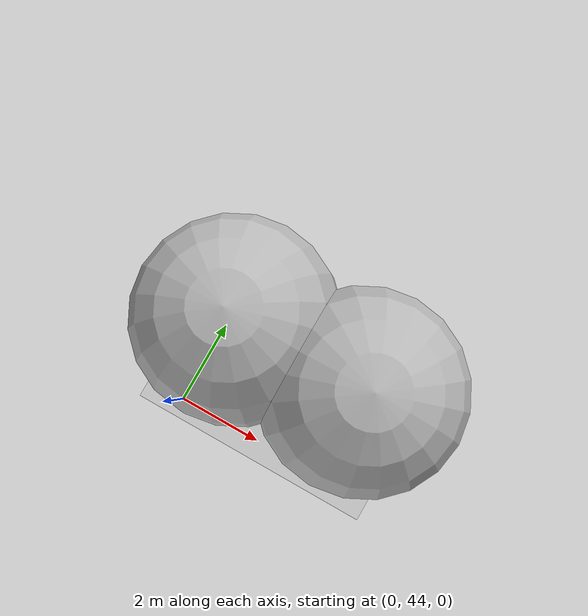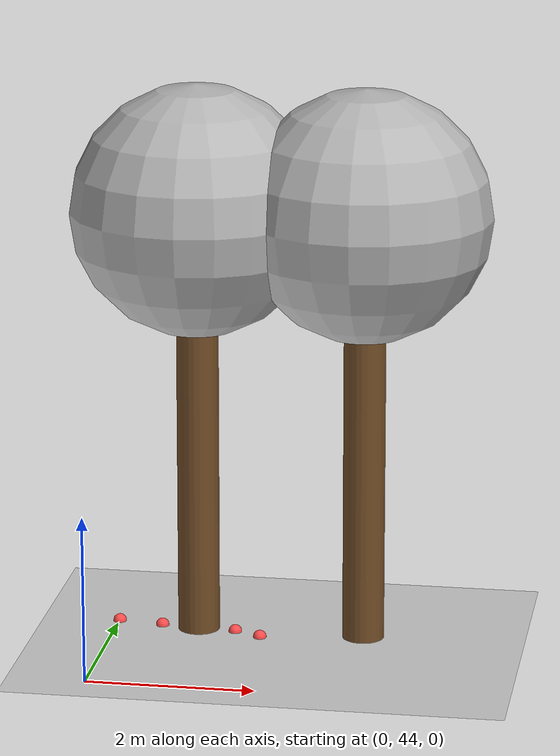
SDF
<sdf version="1.7">
 <world name="default">
  <model name="ground_plane">
   <static>1</static>
   <link name="link">
    <collision name="collision">
     <geometry><plane><normal>0 0 1</normal><size>100 100</size></plane></geometry>
     <surface>
      <contact><collide_bitmask>65535</collide_bitmask></contact>
      <friction><ode><mu>100</mu><mu2>50</mu2></ode></friction>
     </surface>
    </collision>
    <visual name="visual">
     <cast_shadows>0</cast_shadows>
     <geometry><plane><normal>0 0 1</normal><size>100 100</size></plane></geometry>
     <material>
      <script><uri>file://media/materials/scripts/gazebo.material</uri><name>Gazebo/Grey</name></script>
     </material>
    </visual>
   </link>
  </model>
  <model name="tree_simple_4">
   <static>1</static>
   <link name="link">
    <pose>0 0 0.1 0 -0 0</pose>
    <inertial>
     <mass>666</mass>
     <inertia>
      <ixx>0.0861167</ixx>
      <ixy>0</ixy>
      <ixz>0</ixz>
      <iyy>0.0861167</iyy>
      <iyz>0</iyz>
      <izz>0.0861167</izz>
     </inertia>
    </inertial>
    <collision name="collision_trunk">
     <pose>0 0 2 0 -0 0</pose>
     <geometry><cylinder><radius>0.25</radius><length>4</length></cylinder></geometry>
     <surface>
      <contact>
       <poissons_ratio>0.347</poissons_ratio>
       <elastic_modulus>8.8e+09</elastic_modulus>
       <ode><kp>100000</kp><kd>100</kd><max_vel>100</max_vel><min_depth>0.001</min_depth></ode>
      </contact>
      <friction>
       <torsional>
        <coefficient>1</coefficient>
        <use_patch_radius>0</use_patch_radius>
        <surface_radius>0.01</surface_radius>
       </torsional>
      </friction>
     </surface>
    </collision>
    <collision name="collision_treetop">
     <pose>0 0 5.2 0 -0 0</pose>
     <geometry><sphere><radius>1.5</radius></sphere></geometry>
     <surface>
      <contact>
       <poissons_ratio>0.347</poissons_ratio>
       <elastic_modulus>8.8e+09</elastic_modulus>
       <ode><kp>100000</kp><kd>100</kd><max_vel>100</max_vel><min_depth>0.001</min_depth></ode>
      </contact>
      <friction>
       <torsional>
        <coefficient>1</coefficient>
        <use_patch_radius>0</use_patch_radius>
        <surface_radius>0.01</surface_radius>
       </torsional>
      </friction>
     </surface>
    </collision>
    <visual name="trunk">
     <pose>0 0 2 0 -0 0</pose>
     <geometry><cylinder><radius>0.25</radius><length>4</length></cylinder></geometry>
     <material>
      <script>
       <uri>model://tree_simple/scripts</uri>
       <uri>model://tree_simple/materials/textures</uri>
       <name>TreeSimple/Trunk</name>
      </script>
     </material>
    </visual>
    <visual name="treetop">
     <pose>0 0 5.2 0 -0 0</pose>
     <geometry><sphere><radius>1.5</radius></sphere></geometry>
     <material>
      <script>
       <uri>model://tree_simple/scripts</uri>
       <uri>model://tree_simple/materials/textures</uri>
       <name>TreeSimple/Treetop</name>
      </script>
     </material>
    </visual>
   </link>
   <pose>1 46 -0.1 0 -0 0</pose>
  </model>
  <model name="tree_simple_5">
   <static>1</static>
   <link name="link">
    <pose>0 0 0.1 0 -0 0</pose>
    <inertial>
     <mass>666</mass>
     <inertia>
      <ixx>0.0861167</ixx>
      <ixy>0</ixy>
      <ixz>0</ixz>
      <iyy>0.0861167</iyy>
      <iyz>0</iyz>
      <izz>0.0861167</izz>
     </inertia>
    </inertial>
    <collision name="collision_trunk">
     <pose>0 0 2 0 -0 0</pose>
     <geometry><cylinder><radius>0.25</radius><length>4</length></cylinder></geometry>
     <surface>
      <contact>
       <poissons_ratio>0.347</poissons_ratio>
       <elastic_modulus>8.8e+09</elastic_modulus>
       <ode><kp>100000</kp><kd>100</kd><max_vel>100</max_vel><min_depth>0.001</min_depth></ode>
      </contact>
      <friction>
       <torsional>
        <coefficient>1</coefficient>
        <use_patch_radius>0</use_patch_radius>
        <surface_radius>0.01</surface_radius>
       </torsional>
      </friction>
     </surface>
    </collision>
    <collision name="collision_treetop">
     <pose>0 0 5.2 0 -0 0</pose>
     <geometry><sphere><radius>1.5</radius></sphere></geometry>
     <surface>
      <contact>
       <poissons_ratio>0.347</poissons_ratio>
       <elastic_modulus>8.8e+09</elastic_modulus>
       <ode><kp>100000</kp><kd>100</kd><max_vel>100</max_vel><min_depth>0.001</min_depth></ode>
      </contact>
      <friction>
       <torsional>
        <coefficient>1</coefficient>
        <use_patch_radius>0</use_patch_radius>
        <surface_radius>0.01</surface_radius>
       </torsional>
      </friction>
     </surface>
    </collision>
    <visual name="trunk">
     <pose>0 0 2 0 -0 0</pose>
     <geometry><cylinder><radius>0.25</radius><length>4</length></cylinder></geometry>
     <material>
      <script>
       <uri>model://tree_simple/scripts</uri>
       <uri>model://tree_simple/materials/textures</uri>
       <name>TreeSimple/Trunk</name>
      </script>
     </material>
    </visual>
    <visual name="treetop">
     <pose>0 0 5.2 0 -0 0</pose>
     <geometry><sphere><radius>1.5</radius></sphere></geometry>
     <material>
      <script>
       <uri>model://tree_simple/scripts</uri>
       <uri>model://tree_simple/materials/textures</uri>
       <name>TreeSimple/Treetop</name>
      </script>
     </material>
    </visual>
   </link>
   <pose>3 46 -0.1 0 -0 0</pose>
  </model>
  <model name="seed_red_13">
   <link name="link">
    <inertial>
     <mass>1</mass>
     <inertia><ixx>0.1</ixx><ixy>0</ixy><ixz>0</ixz><iyy>0.1</iyy><iyz>0</iyz><izz>0.1</izz></inertia>
    </inertial>
    <visual name="visual">
     <geometry><sphere><radius>0.08</radius></sphere></geometry>
     <material>
      <script><name>Gazebo/Grey</name><uri>file://media/materials/scripts/gazebo.material</uri></script>
      <shader type="pixel"><normal_map>__default__</normal_map></shader>
      <ambient>1 0.3 0.3 1</ambient>
      <diffuse>0.7 0.7 0.7 1</diffuse>
      <specular>0.01 0.01 0.01 1</specular>
      <emissive>0 0 0 1</emissive>
     </material>
    </visual>
    <collision name="collision">
     <geometry><sphere><radius>0.0005</radius></sphere></geometry>
     <surface>
      <friction>
       <ode><mu>1</mu><mu2>1</mu2><fdir1>0 0 0</fdir1><slip1>0</slip1><slip2>0</slip2></ode>
       <torsional>
        <coefficient>1</coefficient>
        <patch_radius>0</patch_radius>
        <surface_radius>0</surface_radius>
        <use_patch_radius>1</use_patch_radius>
        <ode><slip>0</slip></ode>
       </torsional>
      </friction>
      <bounce><restitution_coefficient>0</restitution_coefficient><threshold>1e+06</threshold></bounce>
      <contact>
       <collide_without_contact>0</collide_without_contact>
       <collide_without_contact_bitmask>1</collide_without_contact_bitmask>
       <collide_bitmask>1</collide_bitmask>
       <ode>
        <soft_cfm>0</soft_cfm>
        <soft_erp>0.2</soft_erp>
        <kp>1e+13</kp>
        <kd>1</kd>
        <max_vel>0.01</max_vel>
        <min_depth>0</min_depth>
       </ode>
       <bullet>
        <split_impulse>1</split_impulse>
        <split_impulse_penetration_threshold>-0.01</split_impulse_penetration_threshold>
        <soft_cfm>0</soft_cfm>
        <soft_erp>0.2</soft_erp>
        <kp>1e+13</kp>
        <kd>1</kd>
       </bullet>
      </contact>
     </surface>
    </collision>
   </link>
   <static>0</static>
   <pose>0.002178 46.1145 0.0005 0 -0 0</pose>
  </model>
  <model name="seed_red_14">
   <link name="link">
    <inertial>
     <mass>1</mass>
     <inertia><ixx>0.1</ixx><ixy>0</ixy><ixz>0</ixz><iyy>0.1</iyy><iyz>0</iyz><izz>0.1</izz></inertia>
    </inertial>
    <visual name="visual">
     <geometry><sphere><radius>0.08</radius></sphere></geometry>
     <material>
      <script><name>Gazebo/Grey</name><uri>file://media/materials/scripts/gazebo.material</uri></script>
      <shader type="pixel"><normal_map>__default__</normal_map></shader>
      <ambient>1 0.3 0.3 1</ambient>
      <diffuse>0.7 0.7 0.7 1</diffuse>
      <specular>0.01 0.01 0.01 1</specular>
      <emissive>0 0 0 1</emissive>
     </material>
    </visual>
    <collision name="collision">
     <geometry><sphere><radius>0.0005</radius></sphere></geometry>
     <surface>
      <friction>
       <ode><mu>1</mu><mu2>1</mu2><fdir1>0 0 0</fdir1><slip1>0</slip1><slip2>0</slip2></ode>
       <torsional>
        <coefficient>1</coefficient>
        <patch_radius>0</patch_radius>
        <surface_radius>0</surface_radius>
        <use_patch_radius>1</use_patch_radius>
        <ode><slip>0</slip></ode>
       </torsional>
      </friction>
      <bounce><restitution_coefficient>0</restitution_coefficient><threshold>1e+06</threshold></bounce>
      <contact>
       <collide_without_contact>0</collide_without_contact>
       <collide_without_contact_bitmask>1</collide_without_contact_bitmask>
       <collide_bitmask>1</collide_bitmask>
       <ode>
        <soft_cfm>0</soft_cfm>
        <soft_erp>0.2</soft_erp>
        <kp>1e+13</kp>
        <kd>1</kd>
        <max_vel>0.01</max_vel>
        <min_depth>0</min_depth>
       </ode>
       <bullet>
        <split_impulse>1</split_impulse>
        <split_impulse_penetration_threshold>-0.01</split_impulse_penetration_threshold>
        <soft_cfm>0</soft_cfm>
        <soft_erp>0.2</soft_erp>
        <kp>1e+13</kp>
        <kd>1</kd>
       </bullet>
      </contact>
     </surface>
    </collision>
   </link>
   <static>0</static>
   <pose>0.543383 46.04 0.0005 0 -0 0</pose>
  </model>
  <model name="seed_red_15">
   <link name="link">
    <inertial>
     <mass>1</mass>
     <inertia><ixx>0.1</ixx><ixy>0</ixy><ixz>0</ixz><iyy>0.1</iyy><iyz>0</iyz><izz>0.1</izz></inertia>
    </inertial>
    <visual name="visual">
     <geometry><sphere><radius>0.08</radius></sphere></geometry>
     <material>
      <script><name>Gazebo/Grey</name><uri>file://media/materials/scripts/gazebo.material</uri></script>
      <shader type="pixel"><normal_map>__default__</normal_map></shader>
      <ambient>1 0.3 0.3 1</ambient>
      <diffuse>0.7 0.7 0.7 1</diffuse>
      <specular>0.01 0.01 0.01 1</specular>
      <emissive>0 0 0 1</emissive>
     </material>
    </visual>
    <collision name="collision">
     <geometry><sphere><radius>0.0005</radius></sphere></geometry>
     <surface>
      <friction>
       <ode><mu>1</mu><mu2>1</mu2><fdir1>0 0 0</fdir1><slip1>0</slip1><slip2>0</slip2></ode>
       <torsional>
        <coefficient>1</coefficient>
        <patch_radius>0</patch_radius>
        <surface_radius>0</surface_radius>
        <use_patch_radius>1</use_patch_radius>
        <ode><slip>0</slip></ode>
       </torsional>
      </friction>
      <bounce><restitution_coefficient>0</restitution_coefficient><threshold>1e+06</threshold></bounce>
      <contact>
       <collide_without_contact>0</collide_without_contact>
       <collide_without_contact_bitmask>1</collide_without_contact_bitmask>
       <collide_bitmask>1</collide_bitmask>
       <ode>
        <soft_cfm>0</soft_cfm>
        <soft_erp>0.2</soft_erp>
        <kp>1e+13</kp>
        <kd>1</kd>
        <max_vel>0.01</max_vel>
        <min_depth>0</min_depth>
       </ode>
       <bullet>
        <split_impulse>1</split_impulse>
        <split_impulse_penetration_threshold>-0.01</split_impulse_penetration_threshold>
        <soft_cfm>0</soft_cfm>
        <soft_erp>0.2</soft_erp>
        <kp>1e+13</kp>
        <kd>1</kd>
       </bullet>
      </contact>
     </surface>
    </collision>
   </link>
   <static>0</static>
   <pose>1.77451 45.7986 0.0005 0 -0 0</pose>
  </model>
  <model name="seed_red_16">
   <link name="link">
    <inertial>
     <mass>1</mass>
     <inertia><ixx>0.1</ixx><ixy>0</ixy><ixz>0</ixz><iyy>0.1</iyy><iyz>0</iyz><izz>0.1</izz></inertia>
    </inertial>
    <visual name="visual">
     <geometry><sphere><radius>0.08</radius></sphere></geometry>
     <material>
      <script><name>Gazebo/Grey</name><uri>file://media/materials/scripts/gazebo.material</uri></script>
      <shader type="pixel"><normal_map>__default__</normal_map></shader>
      <ambient>1 0.3 0.3 1</ambient>
      <diffuse>0.7 0.7 0.7 1</diffuse>
      <specular>0.01 0.01 0.01 1</specular>
      <emissive>0 0 0 1</emissive>
     </material>
    </visual>
    <collision name="collision">
     <geometry><sphere><radius>0.0005</radius></sphere></geometry>
     <surface>
      <friction>
       <ode><mu>1</mu><mu2>1</mu2><fdir1>0 0 0</fdir1><slip1>0</slip1><slip2>0</slip2></ode>
       <torsional>
        <coefficient>1</coefficient>
        <patch_radius>0</patch_radius>
        <surface_radius>0</surface_radius>
        <use_patch_radius>1</use_patch_radius>
        <ode><slip>0</slip></ode>
       </torsional>
      </friction>
      <bounce><restitution_coefficient>0</restitution_coefficient><threshold>1e+06</threshold></bounce>
      <contact>
       <collide_without_contact>0</collide_without_contact>
       <collide_without_contact_bitmask>1</collide_without_contact_bitmask>
       <collide_bitmask>1</collide_bitmask>
       <ode>
        <soft_cfm>0</soft_cfm>
        <soft_erp>0.2</soft_erp>
        <kp>1e+13</kp>
        <kd>1</kd>
        <max_vel>0.01</max_vel>
        <min_depth>0</min_depth>
       </ode>
       <bullet>
        <split_impulse>1</split_impulse>
        <split_impulse_penetration_threshold>-0.01</split_impulse_penetration_threshold>
        <soft_cfm>0</soft_cfm>
        <soft_erp>0.2</soft_erp>
        <kp>1e+13</kp>
        <kd>1</kd>
       </bullet>
      </contact>
     </surface>
    </collision>
   </link>
   <static>0</static>
   <pose>1.45062 45.9487 0.0005 0 -0 0</pose>
  </model>
 </world>
</sdf>
